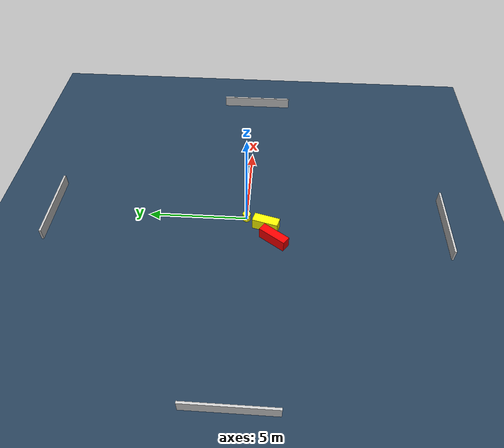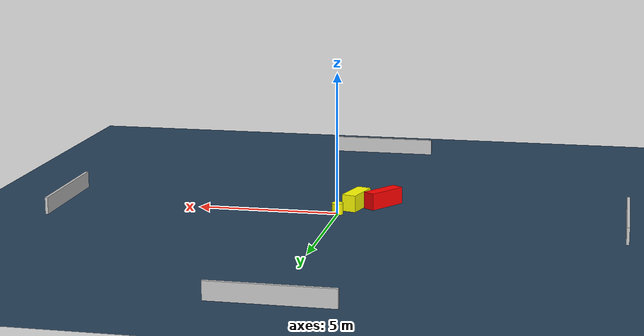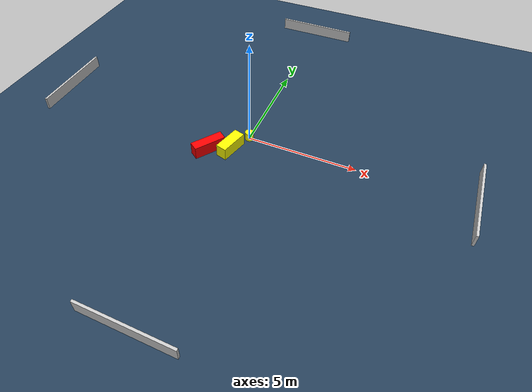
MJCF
<?xml version="1.0" ?>
<mujoco model="generated_environment">
  <option timestep="0.01" integrator="RK4" cone="elliptic"/>
  <default>
    <geom density="1"/>
  </default>
  <asset>
    <texture builtin="gradient" height="3072" name="skybox" rgb1="0.3 0.5 0.7" rgb2="0 0 0" type="skybox" width="512"/>
    <texture builtin="checker" height="300" name="groundplane" rgb1="0.2 0.3 0.4" rgb2="0.1 0.2 0.3" type="2d" width="300"/>
    <material name="groundplane" reflectance="0.2" texrepeat="5 5" texture="groundplane"/>
  </asset>
  <worldbody>
    <light dir="0 0 -1" directional="true" pos="0 0 1.5"/>
    <geom condim="3" friction="0.5 0.005 0.001" material="groundplane" name="floor" pos="0 0 0" size="0 0 0.05" type="plane"/>
    <body name="walls">
      <geom name="wall_1" condim="4" pos="-10.0 0.0 0.3" rgba="0.800000011920929 0.800000011920929 0.800000011920929 1.0" size="0.05 2.0 0.3" type="box"/>
      <geom name="wall_2" condim="4" pos="10.0 0.0 0.3" rgba="0.800000011920929 0.800000011920929 0.800000011920929 1.0" size="0.05 2.0 0.3" type="box"/>
      <geom name="wall_3" condim="4" pos="0.0 -10.0 0.3" rgba="0.800000011920929 0.800000011920929 0.800000011920929 1.0" size="2.0 0.05 0.3" type="box"/>
      <geom name="wall_4" condim="4" pos="0.0 10.0 0.3" rgba="0.800000011920929 0.800000011920929 0.800000011920929 1.0" size="2.0 0.05 0.3" type="box"/>
    </body>
    <body name="robot">
      <joint name="joint_x" type="slide" pos="0 0 0" axis="1 0 0"/>
      <joint name="joint_y" type="slide" pos="0 0 0" axis="0 1 0"/>
      <geom name="robot" type="cylinder" pos="0.0 0.0 0.2" size="0.2 0.2 0.0" mass="5.0" friction="1.0 0.005 0.0001" condim="4" rgba="1.0 1.0 0.0 1.0"/>
    </body>
    <body name="obstacle_1_movable">
      <geom name="obstacle_1_movable" condim="4" pos="-0.49791224009165985 -0.9977280942674945 0.3" euler="0 0 165.00834820715446" friction="0.0 0.005 0.001" rgba="1.0 1.0 0.0 1.0" size="0.2523880028738321 0.6505118124923148 0.3" type="box" mass="0.1"/>
      <joint type="free"/>
    </body>
    <body name="obstacle_2_static">
      <geom name="obstacle_2_static" condim="4" pos="-1.3943550798816244 -1.4221845532159278 0.3" euler="0 0 234.7344825818444" friction="0.0 0.005 0.001" rgba="1.0 0.0 0.0 1.0" size="0.7389192244832623 0.22306474829213688 0.3" type="box"/>
    </body>
  </worldbody>
  <actuator>
    <motor name="actuator_x" joint="joint_x" gear="1" ctrlrange="-1 1"/>
    <motor name="actuator_y" joint="joint_y" gear="1" ctrlrange="-1 1"/>
  </actuator>
</mujoco>
